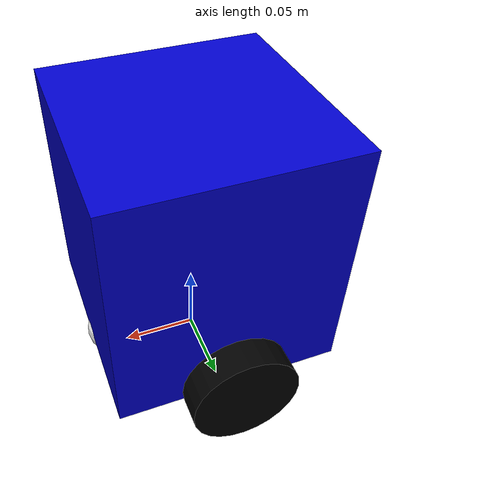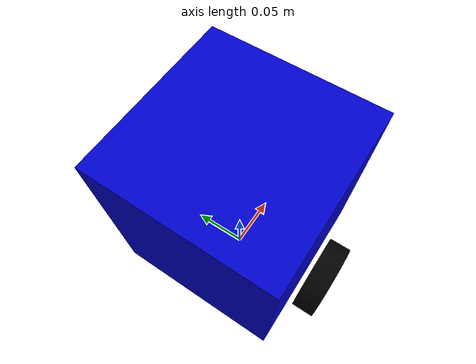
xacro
<?xml version="1.0"?>
<robot xmlns:xacro="http://www.ros.org/wiki/xacro" name="mcsoccer">

    <xacro:property name="chassis_mass" value="1.3"/>
    <xacro:property name="chassis_width" value="0.15"/>
    <xacro:property name="chassis_length" value="0.15"/>
    <xacro:property name="chassis_height" value="0.165"/>
    <xacro:property name="wheel_radius" value="0.035"/>
    <xacro:property name="wheel_width" value="0.02"/>
    <xacro:property name="wheel_mass" value="0.1"/>
    <xacro:property name="wheel_offset_y" value="${chassis_width/2 + 0.015}"/>

    <material name="blue"> <color rgba="0 0 0.8 1"/> </material>
    <material name="black"> <color rgba="0 0 0 1"/> </material>
    <material name="white"> <color rgba="1 1 1 1"/> </material>

    <xacro:macro name="box_inertia" params="m x y z">
        <inertial>
            <mass value="${m}"/>
            <inertia ixx="${(m/12) * (y*y + z*z)}" ixy="0" ixz="0"
                     iyy="${(m/12) * (x*x + z*z)}" iyz="0"
                     izz="${(m/12) * (x*x + y*y)}"/>
        </inertial>
    </xacro:macro>

    <xacro:macro name="cylinder_inertia" params="m r h">
        <inertial>
            <mass value="${m}"/>
            <inertia ixx="${(m/12) * (3*r*r + h*h)}" ixy="0" ixz="0"
                     iyy="${(m/12) * (3*r*r + h*h)}" iyz="0"
                     izz="${(m/2) * (r*r)}"/>
        </inertial>
    </xacro:macro>

    <xacro:macro name="sphere_inertia" params="m r">
        <inertial>
            <mass value="${m}"/>
            <inertia ixx="${(2/5) * m * (r*r)}" ixy="0" ixz="0"
                     iyy="${(2/5) * m * (r*r)}" iyz="0"
                     izz="${(2/5) * m * (r*r)}"/>
        </inertial>
    </xacro:macro>

    <link name="base_link"></link>

    <joint name="chassis_joint" type="fixed">
        <parent link="base_link"/>
        <child link="chassis"/>
        <origin xyz="0 0 ${chassis_height/2 + 0.02}"/>
    </joint>

    <link name="chassis">
        <visual>
            <geometry> <box size="${chassis_length} ${chassis_width} ${chassis_height}"/> </geometry>
            <material name="blue"/>
        </visual>
        <collision>
            <geometry> <box size="${chassis_length} ${chassis_width} ${chassis_height}"/> </geometry>
        </collision>
        <xacro:box_inertia m="${chassis_mass}" x="${chassis_length}" y="${chassis_width}" z="${chassis_height}"/>
    </link>

    <xacro:macro name="wheel" params="prefix reflect">
        <link name="${prefix}_wheel">
            <visual>
                <geometry> <cylinder radius="${wheel_radius}" length="${wheel_width}"/> </geometry>
                <material name="black"/>
            </visual>
            <collision>
                <geometry> <cylinder radius="${wheel_radius}" length="${wheel_width}"/> </geometry>
            </collision>
            <xacro:cylinder_inertia m="${wheel_mass}" r="${wheel_radius}" h="${wheel_width}"/>
        </link>

        <joint name="${prefix}_wheel_joint" type="continuous">
            <parent link="base_link"/>
            <child link="${prefix}_wheel"/>
            <origin xyz="0 ${reflect * wheel_offset_y} ${wheel_radius}" rpy="-${pi/2} 0 0"/>
            <axis xyz="0 0 1"/>
        </joint>
    </xacro:macro>

    <xacro:wheel prefix="left" reflect="1"/>
    <xacro:wheel prefix="right" reflect="-1"/>

    <link name="caster_wheel">
        <visual>
            <geometry> <sphere radius="${wheel_radius/2}"/> </geometry>
            <material name="white"/>
        </visual>
        <collision>
            <geometry> <sphere radius="${wheel_radius/2}"/> </geometry>
        </collision>
        <xacro:sphere_inertia m="0.05" r="${wheel_radius/2}"/>
    </link>

    <joint name="caster_joint" type="fixed">
        <parent link="chassis"/>
        <child link="caster_wheel"/>
        <origin xyz="0.06 0 -${chassis_height/2 + 0.02 - (wheel_radius/2)}"/>
    </joint>

    <xacro:include filename="mcsoccer.gazebo" />

</robot>
